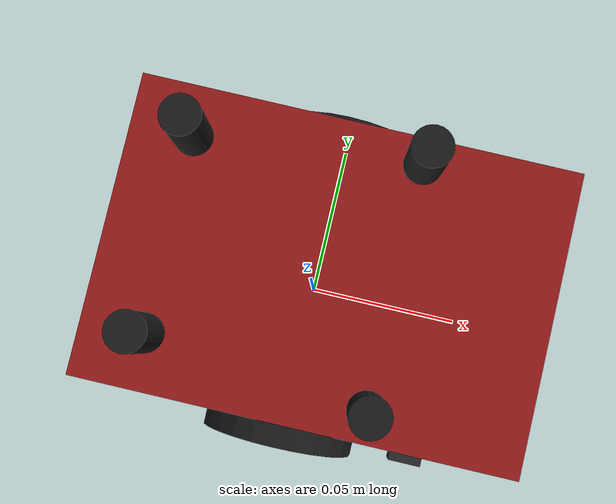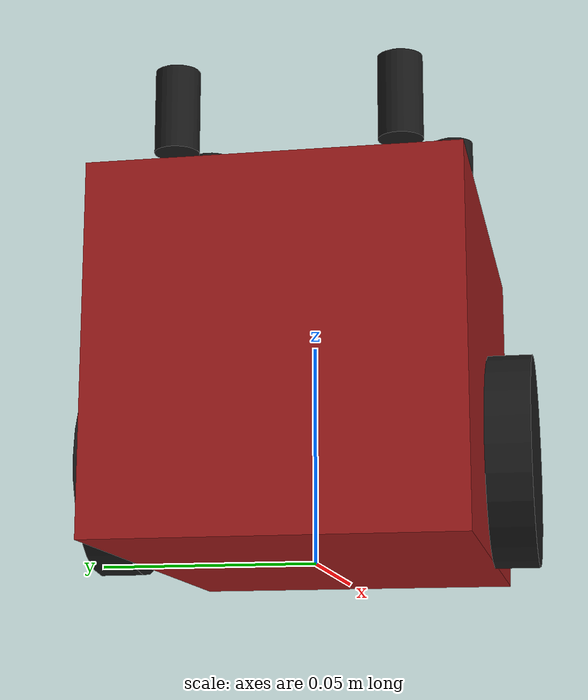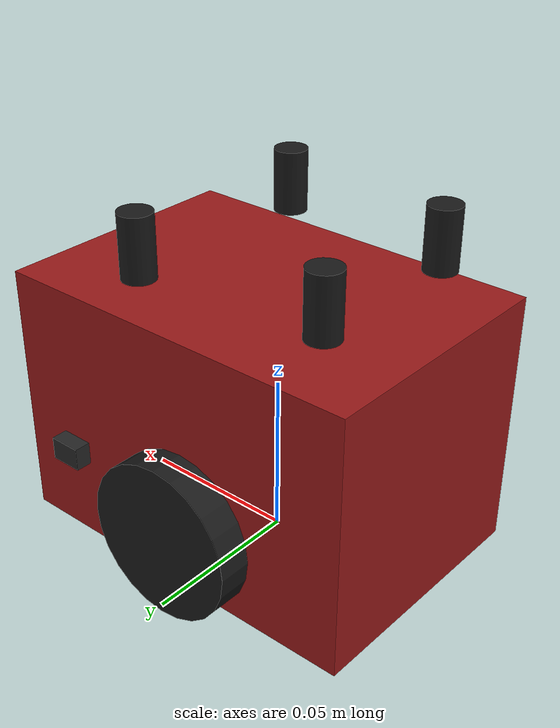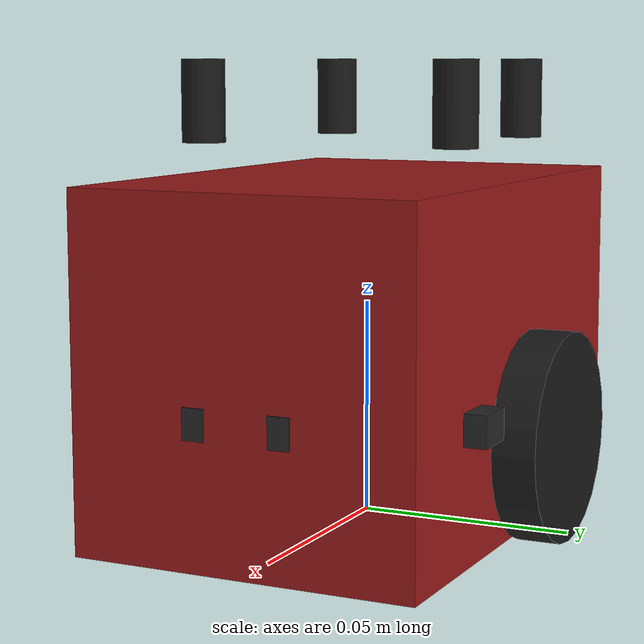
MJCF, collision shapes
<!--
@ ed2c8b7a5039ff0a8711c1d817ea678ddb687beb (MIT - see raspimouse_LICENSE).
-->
<mujoco model="raspimouse">
  <compiler angle="radian" meshdir="meshes" autolimits="true"/>

  <default>
    <default class="raspimouse">
      <default class="visual">
        <geom type="mesh" contype="0" conaffinity="0" group="2"/>
      </default>
      <default class="collision">
        <geom type="box" group="3" rgba="0.6 0.1 0.1 0.35"/>
      </default>
      <default class="wheel_collision">
        <geom type="cylinder" group="3" rgba="0.1 0.1 0.1 0.4" friction="1.0 0.005 0.0001"/>
      </default>
      <default class="wheel">
        <joint damping="0.0005" armature="1e-5"/>
      </default>
    </default>
  </default>

  <asset>
    <material name="mat_mount" rgba="0.2 0.2 0.2 1"/>
    <material name="mat_raspimouse_body__m0" rgba="0.0008 0.0008 0.0008 1"/>
    <material name="mat_raspimouse_body__m1" rgba="0.5 0.5 0.5 1"/>
    <material name="mat_raspimouse_body__m2" rgba="0.512 0 0 1"/>
    <material name="mat_raspimouse_body__m3" rgba="0 0.2087 0 1"/>
    <material name="mat_raspimouse_body__m4" rgba="0.4096 0.4096 0.4096 1"/>
    <material name="mat_raspimouse_top_plate" rgba="0.64 0.64 0.64 1"/>
    <material name="mat_raspimouse_wheel__m0" rgba="0.013 0.013 0.013 1"/>
    <material name="mat_raspimouse_wheel__m1" rgba="0.512 0.512 0.512 1"/>
    <mesh file="raspimouse_body__m0.obj"/>
    <mesh file="raspimouse_body__m1.obj"/>
    <mesh file="raspimouse_body__m2.obj"/>
    <mesh file="raspimouse_body__m3.obj"/>
    <mesh file="raspimouse_body__m4.obj"/>
    <mesh file="raspimouse_top_plate.obj"/>
    <mesh file="raspimouse_wheel__m0.obj"/>
    <mesh file="raspimouse_wheel__m1.obj"/>
    <mesh file="RasPiMouse_MultiLiDARMount.stl" scale="0.001 0.001 0.001"/>
  </asset>

  <worldbody>
    <body name="base_link" childclass="raspimouse">
      <freejoint name="base_free"/>
      <site name="base_imu" pos="0 0 0" size="0.005" rgba="0 0 0 0"/>
      <body name="body_link" pos="0 0 0">
        <inertial pos="-0.005075 0.0 0.03" mass="0.7186" diaginertia="0.0007466666666666666 0.0009566666666666668 0.0009566666666666668"/>
        <geom class="visual" mesh="raspimouse_body__m0" material="mat_raspimouse_body__m0"/>
        <geom class="visual" mesh="raspimouse_body__m1" material="mat_raspimouse_body__m1"/>
        <geom class="visual" mesh="raspimouse_body__m2" material="mat_raspimouse_body__m2"/>
        <geom class="visual" mesh="raspimouse_body__m3" material="mat_raspimouse_body__m3"/>
        <geom class="visual" mesh="raspimouse_body__m4" material="mat_raspimouse_body__m4"/>
        <geom class="visual" type="box" size="0.005 0.0025 0.0035" pos="0.04 -0.045 0.032" rgba="0.15 0.15 0.15 1"/>
        <geom class="visual" type="box" size="0.005 0.0025 0.0035" pos="0.059 -0.01 0.032" rgba="0.15 0.15 0.15 1"/>
        <geom class="visual" type="box" size="0.005 0.0025 0.0035" pos="0.059 0.01 0.032" rgba="0.15 0.15 0.15 1"/>
        <geom class="visual" type="box" size="0.005 0.0025 0.0035" pos="0.04 0.045 0.032" rgba="0.15 0.15 0.15 1"/>
        <geom class="collision" name="chassis_geom" size="0.0585 0.04 0.04" pos="0.005 0 0.040"/>
        <geom class="visual" mesh="RasPiMouse_MultiLiDARMount" material="mat_mount" pos="0 0 0.0855"/>
        <geom class="visual" type="cylinder" size="0.005 0.0095" pos="-0.0350398 -0.0249442 0.0972" rgba="0.1 0.1 0.1 1"/>
        <geom class="visual" type="cylinder" size="0.005 0.0095" pos="-0.0349601 0.0250557 0.0972" rgba="0.1 0.1 0.1 1"/>
        <geom class="visual" type="cylinder" size="0.005 0.0095" pos="0.0219506 -0.031035 0.0972" rgba="0.1 0.1 0.1 1"/>
        <geom class="visual" type="cylinder" size="0.005 0.0095" pos="0.0220493 0.0309649 0.0972" rgba="0.1 0.1 0.1 1"/>
        <body name="left_wheel" pos="0 0.0425 0.02215" quat="0.7073883 -0.7068252 0 0">
          <inertial pos="-0.000107 0 0.002875" mass="0.0113" diaginertia="0.000002208187 0.00000218412 0.000004078299"/>
          <joint name="left_wheel_joint" class="wheel" axis="0 0 1"/>
          <geom class="visual" mesh="raspimouse_wheel__m0" material="mat_raspimouse_wheel__m0"/>
          <geom class="visual" mesh="raspimouse_wheel__m1" material="mat_raspimouse_wheel__m1"/>
          <geom class="wheel_collision" name="left_wheel_geom" pos="0 0 0.003"
                size="0.024 0.005"/>
        </body>
        <body name="right_wheel" pos="0 -0.0425 0.02215" quat="0.7073883 0.7068252 0 0">
          <inertial pos="-0.000107 0 0.002875" mass="0.0113" diaginertia="0.000002208187 0.00000218412 0.000004078299"/>
          <joint name="right_wheel_joint" class="wheel" axis="0 0 -1"/>
          <geom class="visual" mesh="raspimouse_wheel__m0" material="mat_raspimouse_wheel__m0"/>
          <geom class="visual" mesh="raspimouse_wheel__m1" material="mat_raspimouse_wheel__m1"/>
          <geom class="wheel_collision" name="right_wheel_geom" pos="0 0 0.003"
                size="0.024 0.005"/>
        </body>
      </body>
    </body>
  </worldbody>

  <contact>
    <!-- Wheel/floor friction stated explicitly: MuJoCo max-combines per-geom friction, so a
         high-friction scene floor would otherwise override the wheels. -->
    <pair geom1="left_wheel_geom" geom2="floor" condim="3" solref="0.01 1" friction="1.0 1.0 0.005 0.0001 0.0001"/>
    <pair geom1="right_wheel_geom" geom2="floor" condim="3" solref="0.01 1" friction="1.0 1.0 0.005 0.0001 0.0001"/>
    <pair geom1="chassis_geom" geom2="floor" condim="3" solref="0.01 1" friction="0.05 0.05 0.005 0.0001 0.0001"/>
  </contact>

  <actuator>
    <velocity name="left_wheel_motor" joint="left_wheel_joint" kv="0.5" ctrlrange="-22 22" forcerange="-0.3 0.3"/>
    <velocity name="right_wheel_motor" joint="right_wheel_joint" kv="0.5" ctrlrange="-22 22" forcerange="-0.3 0.3"/>
  </actuator>

  <keyframe>
    <!-- base_link sits 1.85 mm above the ground; spawn a hair higher so the wheels settle. -->
    <key name="home" qpos="0 0 0.003 1 0 0 0  0 0"/>
  </keyframe>
</mujoco>
